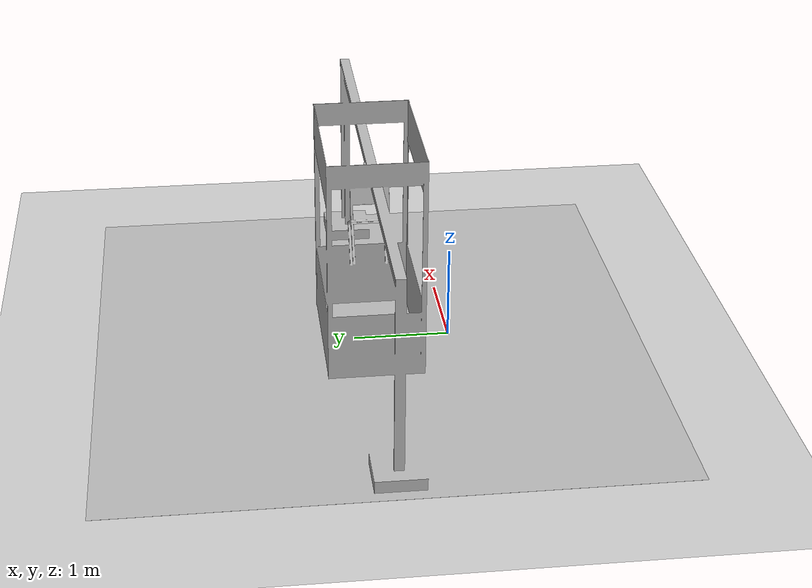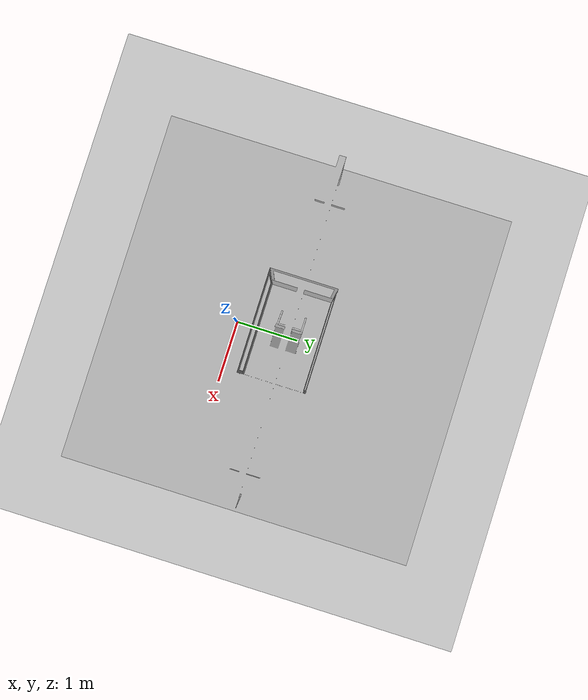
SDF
<?xml version="1.0" ?>

<sdf version="1.6">

  <world name="demo_world">

    <gravity>0 0 -9.81</gravity>
    <magnetic_field>6e-06 2.3e-05 -4.2e-05</magnetic_field>
    <atmosphere type='adiabatic'/>

    <physics name="default_physics" default="0" type="ode">
      <max_step_size>0.001</max_step_size>
      <real_time_factor>1</real_time_factor>
      <real_time_update_rate>1000</real_time_update_rate>
    </physics>

    <scene>
      <ambient>0.4 0.4 0.4 1</ambient>
      <background>0.7 0.7 0.7 1</background>
      <shadows>1</shadows>
    </scene>

    <gui fullscreen='0'>
      <camera name='user_camera'>
        <pose frame=''>-0.271799 2.50314 1.10477 0 0 -1.5708</pose>
        <view_controller>orbit</view_controller>
        <projection_type>perspective</projection_type>
      </camera>
    </gui>

    <spherical_coordinates>
      <surface_model>EARTH_WGS84</surface_model>
      <latitude_deg>0</latitude_deg>
      <longitude_deg>0</longitude_deg>
      <elevation>0</elevation>
      <heading_deg>0</heading_deg>
    </spherical_coordinates>

    <!-- Light Source -->
    <include>
      <uri>model://sun</uri>
    </include>

    <!-- A ground plane -->
    <include>
      <uri>model://ground_plane</uri>
      <pose>0 0 0 0 0 0</pose>
    </include>

    <!-- The robot base -->

    <model name='factory_setup_1'>
        <link name='setup'>
        <pose frame=''>0 0 0 0 -0 0</pose>
        <inertial>
            <pose frame=''>-0.003014 0.84574 0.7222 0 -0 0</pose>
            <mass>201.83</mass>
            <inertia>
            <ixx>255.44</ixx>
            <ixy>0.0028269</ixy>
            <ixz>-1.5101</ixz>
            <iyy>913.23</iyy>
            <iyz>-0.09545</iyz>
            <izz>855.58</izz>
            </inertia>
        </inertial>
        <collision name='setup_collision'>
            <pose frame=''>0 0 0 1.5708 -0 0</pose>
            <geometry>
            <mesh>
                <scale>1 1 1</scale>
                <uri>model://owr_description/meshes/factory_setup/setup.STL</uri>
            </mesh>
            </geometry>
        </collision>
        <visual name='setup_visual'>
            <pose frame=''>0 0 0 1.5708 -0 0</pose>
            <geometry>
            <mesh>
                <scale>1 1 1</scale>
                <uri>model://owr_description/meshes/factory_setup/setup.STL</uri>
            </mesh>
            </geometry>
        </visual>
        </link>
  </model>

  </world>
</sdf>
